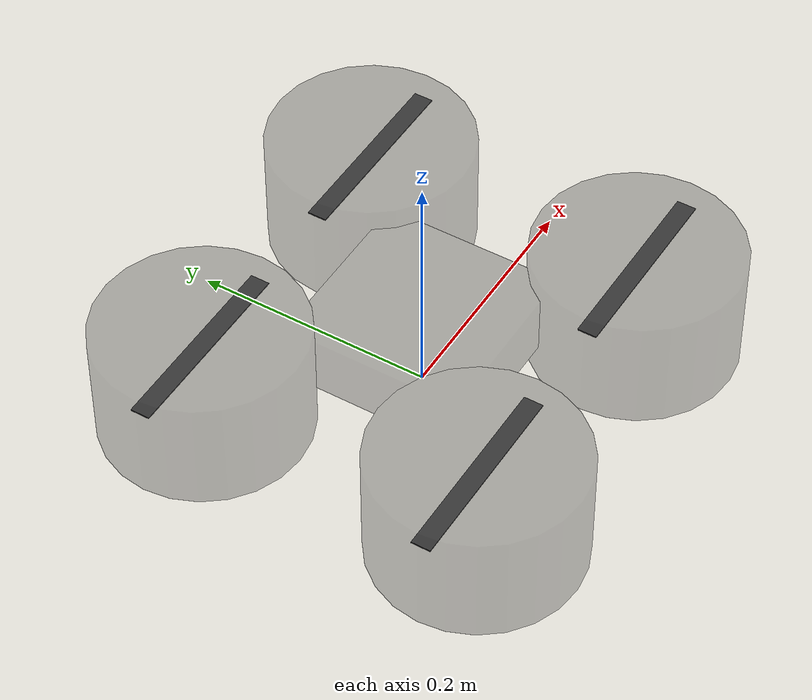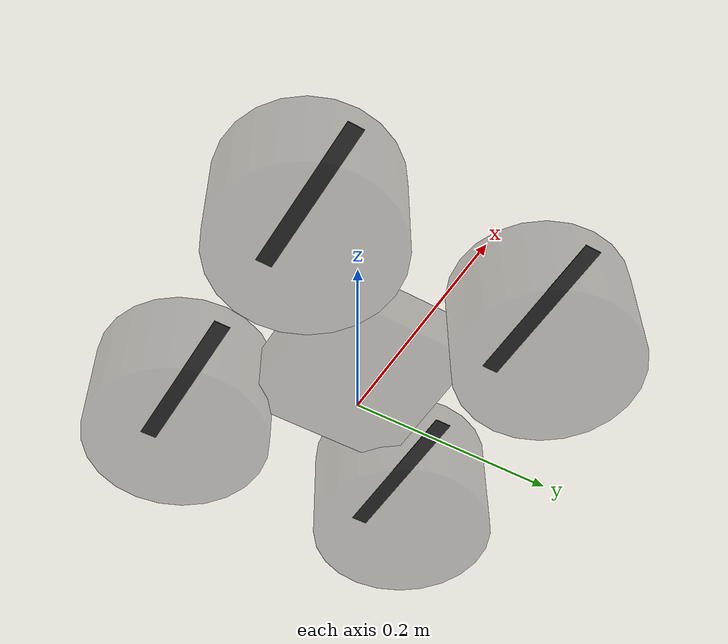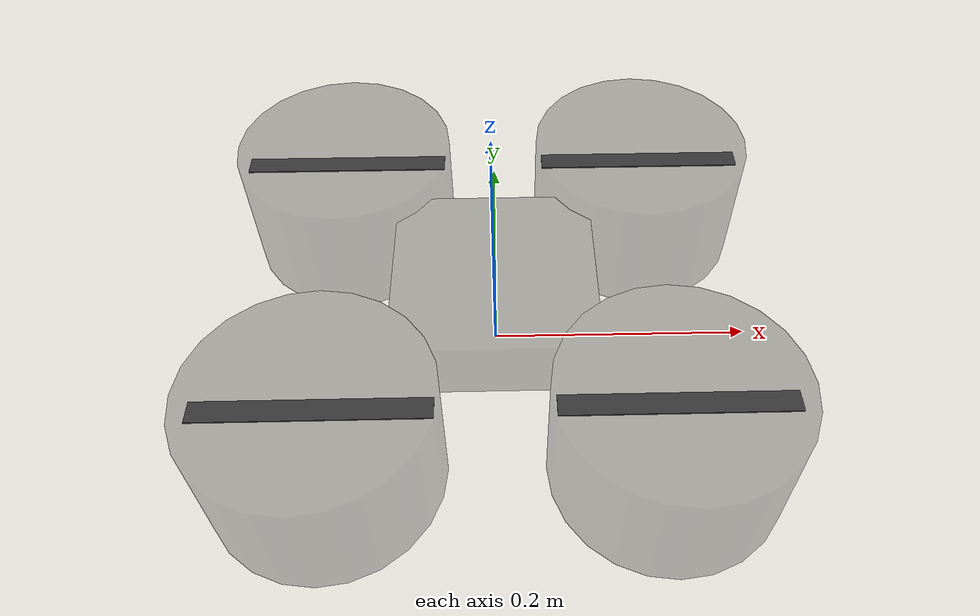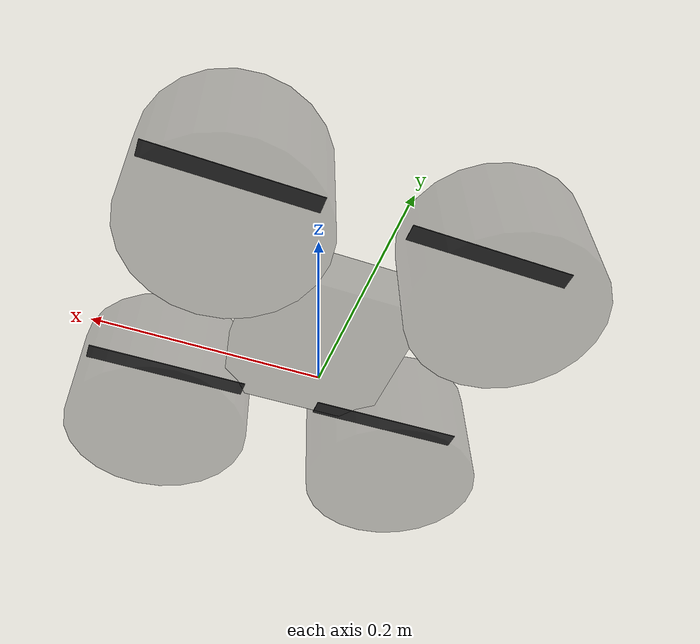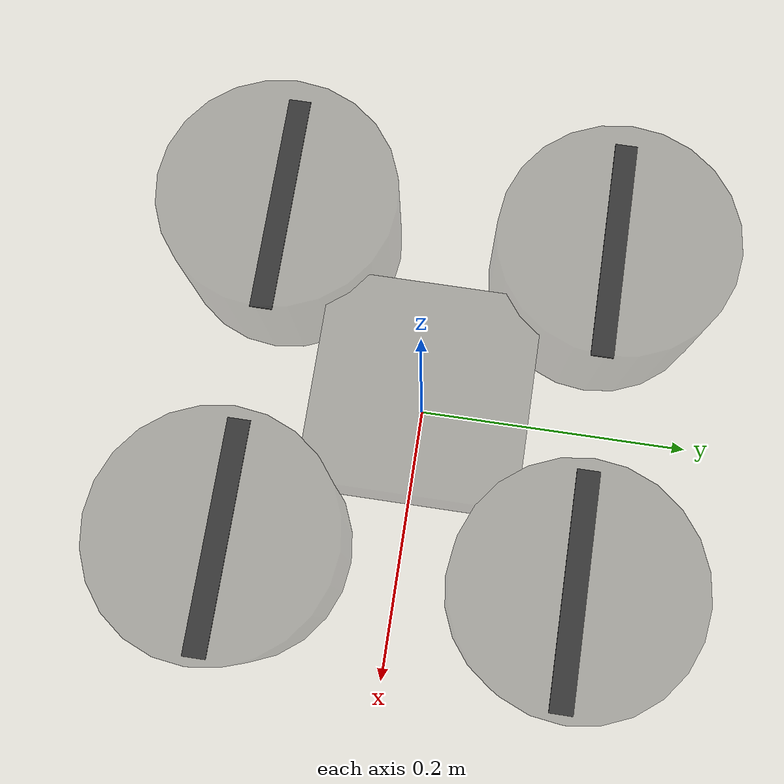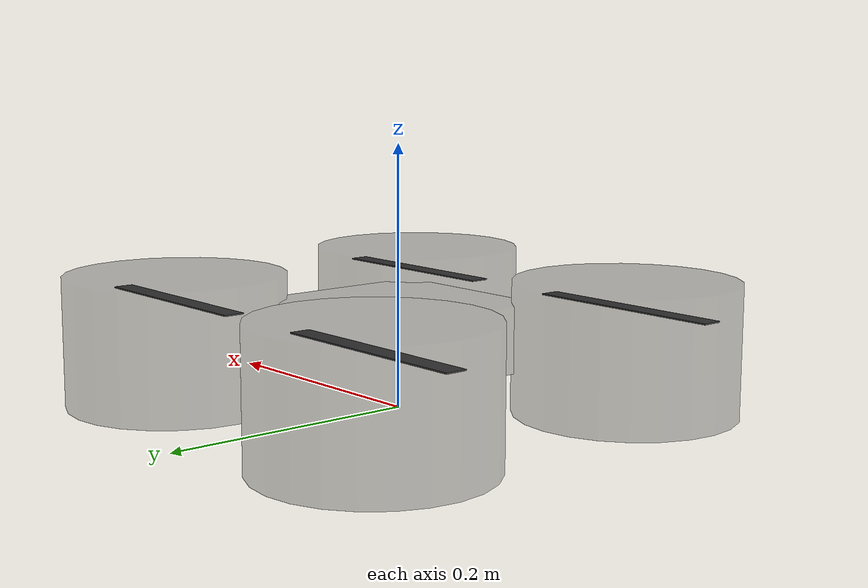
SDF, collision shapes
<?xml version="1.0" encoding="UTF-8"?>
<sdf version='1.9'>
  <model name='x500_custom'>
    <pose>0 0 0.05 0 0 0</pose>
    <self_collide>false</self_collide>
    <static>false</static>
    <link name="base_link">
      <inertial>
        <mass>2.0</mass>
        <inertia>
          <ixx>0.02166666666666667</ixx>
          <ixy>0</ixy>
          <ixz>0</ixz>
          <iyy>0.02166666666666667</iyy>
          <iyz>0</iyz>
          <izz>0.04000000000000001</izz>
        </inertia>
      </inertial>
      <gravity>true</gravity>
      <velocity_decay />

      <visual name="base_link_visual">
        <pose>0 0 .025 0 0 3.141592654</pose>
        <geometry>
          <mesh>
            <scale>0.69 0.69 0.69</scale>
            <uri>model://x500_base/meshes/NXP-HGD-CF.dae</uri>
          </mesh>
        </geometry>
      </visual>

      <visual name="5010_motor_base_0">
        <pose>0.12 0.12 .015 0 0 -.45</pose>
        <geometry>
          <mesh>
            <scale>0.7 0.7 0.7</scale>
            <uri>model://x500_base/meshes/5010Base.dae</uri>
          </mesh>
        </geometry>
      </visual>
      <visual name="5010_motor_base_1">
        <pose>-0.12 0.12 .015 0 0 -.45</pose>
        <geometry>
          <mesh>
            <scale>0.7 0.7 0.7</scale>
            <uri>model://x500_base/meshes/5010Base.dae</uri>
          </mesh>
        </geometry>
      </visual>
      <visual name="5010_motor_base_2">
        <pose>0.12 -0.12 .015 0 0 -.45</pose>
        <geometry>
          <mesh>
            <scale>0.7 0.7 0.7</scale>
            <uri>model://x500_base/meshes/5010Base.dae</uri>
          </mesh>
        </geometry>
      </visual>
      <visual name="5010_motor_base_3">
        <pose>-0.12 -0.12 .015 0 0 -.45</pose>
        <geometry>
          <mesh>
            <scale>0.7 0.7 0.7</scale>
            <uri>model://x500_base/meshes/5010Base.dae</uri>
          </mesh>
        </geometry>
      </visual>

      <collision name="base_link_collision_0">
        <pose>0 0 .007 0 0 0</pose>
        <geometry>
          <box>
            <size>0.15 0.15 0.05</size>
          </box>
        </geometry>
        <surface>
          <contact><ode><min_depth>0.001</min_depth><max_vel>0</max_vel></ode></contact>
          <friction><ode /></friction>
        </surface>
      </collision>

      <visual name="guard_0_visual">
        <pose>0.12 -0.12 0 0 0 0</pose>
        <geometry><cylinder><radius>0.085</radius><length>0.1</length></cylinder></geometry>
        <material>
          <ambient>0.1 0.1 0.1 0.3</ambient>
          <diffuse>0.1 0.1 0.1 0.3</diffuse>
        </material>
      </visual>
      <collision name="guard_0_collision">
        <pose>0.12 -0.12 0 0 0 0</pose>
        <geometry><cylinder><radius>0.085</radius><length>0.1</length></cylinder></geometry>
      </collision>

      <visual name="guard_1_visual">
        <pose>-0.12 0.12 0 0 0 0</pose>
        <geometry><cylinder><radius>0.085</radius><length>0.1</length></cylinder></geometry>
        <material>
          <ambient>0.1 0.1 0.1 0.3</ambient>
          <diffuse>0.1 0.1 0.1 0.3</diffuse>
        </material>
      </visual>
      <collision name="guard_1_collision">
        <pose>-0.12 0.12 0 0 0 0</pose>
        <geometry><cylinder><radius>0.085</radius><length>0.1</length></cylinder></geometry>
      </collision>

      <visual name="guard_2_visual">
        <pose>0.12 0.12 0 0 0 0</pose>
        <geometry><cylinder><radius>0.085</radius><length>0.1</length></cylinder></geometry>
        <material>
          <ambient>0.1 0.1 0.1 0.3</ambient>
          <diffuse>0.1 0.1 0.1 0.3</diffuse>
        </material>
      </visual>
      <collision name="guard_2_collision">
        <pose>0.12 0.12 0 0 0 0</pose>
        <geometry><cylinder><radius>0.085</radius><length>0.1</length></cylinder></geometry>
      </collision>

      <visual name="guard_3_visual">
        <pose>-0.12 -0.12 0 0 0 0</pose>
        <geometry><cylinder><radius>0.085</radius><length>0.1</length></cylinder></geometry>
        <material>
          <ambient>0.1 0.1 0.1 0.3</ambient>
          <diffuse>0.1 0.1 0.1 0.3</diffuse>
        </material>
      </visual>
      <collision name="guard_3_collision">
        <pose>-0.12 -0.12 0 0 0 0</pose>
        <geometry><cylinder><radius>0.085</radius><length>0.1</length></cylinder></geometry>
      </collision>

      <sensor name="air_pressure_sensor" type="air_pressure">
        <gz_frame_id>base_link</gz_frame_id>
        <always_on>1</always_on>
        <update_rate>50</update_rate>
        <air_pressure>
          <pressure>
            <noise type="gaussian"><mean>0</mean><stddev>3</stddev></noise>
          </pressure>
        </air_pressure>
      </sensor>
      <sensor name="magnetometer_sensor" type="magnetometer">
        <gz_frame_id>base_link</gz_frame_id>
        <always_on>1</always_on>
        <update_rate>100</update_rate>
        <magnetometer>
          <x><noise type="gaussian"><stddev>0.0001</stddev></noise></x>
          <y><noise type="gaussian"><stddev>0.0001</stddev></noise></y>
          <z><noise type="gaussian"><stddev>0.0001</stddev></noise></z>
        </magnetometer>
      </sensor>
      <sensor name="imu_sensor" type="imu">
        <gz_frame_id>base_link</gz_frame_id>
        <always_on>1</always_on>
        <update_rate>250</update_rate>
        <imu>
          <angular_velocity>
            <x><noise type="gaussian"><mean>0.0</mean><stddev>0.0008726646</stddev></noise></x>
            <y><noise type="gaussian"><mean>0.0</mean><stddev>0.0008726646</stddev></noise></y>
            <z><noise type="gaussian"><mean>0.0</mean><stddev>0.0008726646</stddev></noise></z>
          </angular_velocity>
          <linear_acceleration>
            <x><noise type="gaussian"><mean>0.0</mean><stddev>0.00637</stddev></noise></x>
            <y><noise type="gaussian"><mean>0.0</mean><stddev>0.00637</stddev></noise></y>
            <z><noise type="gaussian"><mean>0.0</mean><stddev>0.00686</stddev></noise></z>
          </linear_acceleration>
        </imu>
      </sensor>
      <sensor name="navsat_sensor" type="navsat">
        <gz_frame_id>base_link</gz_frame_id>
        <always_on>1</always_on>
        <update_rate>30</update_rate>
      </sensor>
    </link>

    <link name="rotor_0">
      <gravity>true</gravity>
      <self_collide>false</self_collide>
      <velocity_decay />
      <pose>0.12 -0.12 0.03 0 0 0</pose>
      <inertial>
        <mass>0.016076923076923075</mass>
        <inertia>
          <ixx>3.8464910483993325e-07</ixx>
          <iyy>2.6115851691700804e-05</iyy>
          <izz>2.649858234714004e-05</izz>
        </inertia>
      </inertial>
      <visual name="rotor_0_visual">
        <pose>-0.01 -0.07 -0.016 0 0 0</pose>
        <geometry>
          <mesh>
            <scale>0.485 0.485 0.485</scale>
            <uri>model://x500_base/meshes/1345_prop_ccw.stl</uri>
          </mesh>
        </geometry>
        <material>
          <script><name>Gazebo/DarkGrey</name><uri>file://media/materials/scripts/gazebo.material</uri></script>
        </material>
      </visual>
      <visual name="rotor_0_visual_motor_bell">
        <pose>0 0 -.015 0 0 0</pose>
        <geometry>
          <mesh>
            <scale>0.7 0.7 0.7</scale>
            <uri>model://x500_base/meshes/5010Bell.dae</uri>
          </mesh>
        </geometry>
      </visual>
      <collision name="rotor_0_collision">
        <pose>0 0 0 0 0 0</pose>
        <geometry>
          <box>
            <size>0.16 0.016 0.001</size>
          </box>
        </geometry>
      </collision>
    </link>
    <joint name="rotor_0_joint" type="revolute">
      <parent>base_link</parent>
      <child>rotor_0</child>
      <axis><xyz>0 0 1</xyz><limit><lower>-1e+16</lower><upper>1e+16</upper></limit></axis>
    </joint>

    <link name="rotor_1">
      <gravity>true</gravity>
      <self_collide>false</self_collide>
      <velocity_decay />
      <pose>-0.12 0.12 0.03 0 0 0</pose>
      <inertial>
        <mass>0.016076923076923075</mass>
        <inertia>
          <ixx>3.8464910483993325e-07</ixx>
          <iyy>2.6115851691700804e-05</iyy>
          <izz>2.649858234714004e-05</izz>
        </inertia>
      </inertial>
      <visual name="rotor_1_visual">
        <pose>-0.01 -0.07 -0.016 0 0 0</pose>
        <geometry>
          <mesh>
            <scale>0.485 0.485 0.485</scale>
            <uri>model://x500_base/meshes/1345_prop_ccw.stl</uri>
          </mesh>
        </geometry>
        <material>
          <script><name>Gazebo/DarkGrey</name><uri>file://media/materials/scripts/gazebo.material</uri></script>
        </material>
      </visual>
      <visual name="rotor_1_visual_motor_top">
        <pose>0 0 -.015 0 0 0</pose>
        <geometry>
          <mesh>
            <scale>0.7 0.7 0.7</scale>
            <uri>model://x500_base/meshes/5010Bell.dae</uri>
          </mesh>
        </geometry>
      </visual>
      <collision name="rotor_1_collision">
        <pose>0 0 0 0 0 0</pose>
        <geometry>
          <box>
            <size>0.16 0.016 0.001</size>
          </box>
        </geometry>
      </collision>
    </link>
    <joint name="rotor_1_joint" type="revolute">
      <parent>base_link</parent>
      <child>rotor_1</child>
      <axis><xyz>0 0 1</xyz><limit><lower>-1e+16</lower><upper>1e+16</upper></limit></axis>
    </joint>

    <link name="rotor_2">
      <gravity>true</gravity>
      <self_collide>false</self_collide>
      <velocity_decay />
      <pose>0.12 0.12 0.03 0 0 0</pose>
      <inertial>
        <mass>0.016076923076923075</mass>
        <inertia>
          <ixx>3.8464910483993325e-07</ixx>
          <iyy>2.6115851691700804e-05</iyy>
          <izz>2.649858234714004e-05</izz>
        </inertia>
      </inertial>
      <visual name="rotor_2_visual">
        <pose>-0.01 -0.07 -0.016 0 0 0</pose>
        <geometry>
          <mesh>
            <scale>0.485 0.485 0.485</scale>
            <uri>model://x500_base/meshes/1345_prop_cw.stl</uri>
          </mesh>
        </geometry>
        <material>
          <script><name>Gazebo/DarkGrey</name><uri>file://media/materials/scripts/gazebo.material</uri></script>
        </material>
      </visual>
      <visual name="rotor_2_visual_motor_top">
        <pose>0 0 -.015 0 0 0</pose>
        <geometry>
          <mesh>
            <scale>0.7 0.7 0.7</scale>
            <uri>model://x500_base/meshes/5010Bell.dae</uri>
          </mesh>
        </geometry>
      </visual>
      <collision name="rotor_2_collision">
        <pose>0 0 0 0 0 0</pose>
        <geometry>
          <box>
            <size>0.16 0.016 0.001</size>
          </box>
        </geometry>
      </collision>
    </link>
    <joint name="rotor_2_joint" type="revolute">
      <parent>base_link</parent>
      <child>rotor_2</child>
      <axis><xyz>0 0 1</xyz><limit><lower>-1e+16</lower><upper>1e+16</upper></limit></axis>
    </joint>

    <link name="rotor_3">
      <gravity>true</gravity>
      <self_collide>false</self_collide>
      <velocity_decay />
      <pose>-0.12 -0.12 0.03 0 0 0</pose>
      <inertial>
        <mass>0.016076923076923075</mass>
        <inertia>
          <ixx>3.8464910483993325e-07</ixx>
          <iyy>2.6115851691700804e-05</iyy>
          <izz>2.649858234714004e-05</izz>
        </inertia>
      </inertial>
      <visual name="rotor_3_visual">
        <pose>-0.01 -0.07 -0.016 0 0 0</pose>
        <geometry>
          <mesh>
            <scale>0.485 0.485 0.485</scale>
            <uri>model://x500_base/meshes/1345_prop_cw.stl</uri>
          </mesh>
        </geometry>
        <material>
          <script><name>Gazebo/DarkGrey</name><uri>file://media/materials/scripts/gazebo.material</uri></script>
        </material>
      </visual>
      <visual name="rotor_3_visual_motor_top">
        <pose>0 0 -.015 0 0 0</pose>
        <geometry>
          <mesh>
            <scale>0.7 0.7 0.7</scale>
            <uri>model://x500_base/meshes/5010Bell.dae</uri>
          </mesh>
        </geometry>
      </visual>
      <collision name="rotor_3_collision">
        <pose>0 0 0 0 0 0</pose>
        <geometry>
          <box>
            <size>0.16 0.016 0.001</size>
          </box>
        </geometry>
      </collision>
    </link>
    <joint name="rotor_3_joint" type="revolute">
      <parent>base_link</parent>
      <child>rotor_3</child>
      <axis><xyz>0 0 1</xyz><limit><lower>-1e+16</lower><upper>1e+16</upper></limit></axis>
    </joint>

    <plugin filename="gz-sim-multicopter-motor-model-system" name="gz::sim::systems::MulticopterMotorModel">
      <jointName>rotor_0_joint</jointName>
      <linkName>rotor_0</linkName>
      <turningDirection>ccw</turningDirection>
      <timeConstantUp>0.0125</timeConstantUp>
      <timeConstantDown>0.025</timeConstantDown>
      <maxRotVelocity>1000.0</maxRotVelocity>
      <motorConstant>8.54858e-06</motorConstant>
      <momentConstant>0.016</momentConstant>
      <commandSubTopic>command/motor_speed</commandSubTopic>
      <motorNumber>0</motorNumber>
      <rotorDragCoefficient>8.06428e-05</rotorDragCoefficient>
      <rollingMomentCoefficient>1e-06</rollingMomentCoefficient>
      <rotorVelocitySlowdownSim>10</rotorVelocitySlowdownSim>
      <motorType>velocity</motorType>
    </plugin>
    <plugin filename="gz-sim-multicopter-motor-model-system" name="gz::sim::systems::MulticopterMotorModel">
      <jointName>rotor_1_joint</jointName>
      <linkName>rotor_1</linkName>
      <turningDirection>ccw</turningDirection>
      <timeConstantUp>0.0125</timeConstantUp>
      <timeConstantDown>0.025</timeConstantDown>
      <maxRotVelocity>1000.0</maxRotVelocity>
      <motorConstant>8.54858e-06</motorConstant>
      <momentConstant>0.016</momentConstant>
      <commandSubTopic>command/motor_speed</commandSubTopic>
      <motorNumber>1</motorNumber>
      <rotorDragCoefficient>8.06428e-05</rotorDragCoefficient>
      <rollingMomentCoefficient>1e-06</rollingMomentCoefficient>
      <rotorVelocitySlowdownSim>10</rotorVelocitySlowdownSim>
      <motorType>velocity</motorType>
    </plugin>
    <plugin filename="gz-sim-multicopter-motor-model-system" name="gz::sim::systems::MulticopterMotorModel">
      <jointName>rotor_2_joint</jointName>
      <linkName>rotor_2</linkName>
      <turningDirection>cw</turningDirection>
      <timeConstantUp>0.0125</timeConstantUp>
      <timeConstantDown>0.025</timeConstantDown>
      <maxRotVelocity>1000.0</maxRotVelocity>
      <motorConstant>8.54858e-06</motorConstant>
      <momentConstant>0.016</momentConstant>
      <commandSubTopic>command/motor_speed</commandSubTopic>
      <motorNumber>2</motorNumber>
      <rotorDragCoefficient>8.06428e-05</rotorDragCoefficient>
      <rollingMomentCoefficient>1e-06</rollingMomentCoefficient>
      <rotorVelocitySlowdownSim>10</rotorVelocitySlowdownSim>
      <motorType>velocity</motorType>
    </plugin>
    <plugin filename="gz-sim-multicopter-motor-model-system" name="gz::sim::systems::MulticopterMotorModel">
      <jointName>rotor_3_joint</jointName>
      <linkName>rotor_3</linkName>
      <turningDirection>cw</turningDirection>
      <timeConstantUp>0.0125</timeConstantUp>
      <timeConstantDown>0.025</timeConstantDown>
      <maxRotVelocity>1000.0</maxRotVelocity>
      <motorConstant>8.54858e-06</motorConstant>
      <momentConstant>0.016</momentConstant>
      <commandSubTopic>command/motor_speed</commandSubTopic>
      <motorNumber>3</motorNumber>
      <rotorDragCoefficient>8.06428e-05</rotorDragCoefficient>
      <rollingMomentCoefficient>1e-06</rollingMomentCoefficient>
      <rotorVelocitySlowdownSim>10</rotorVelocitySlowdownSim>
      <motorType>velocity</motorType>
    </plugin>
    <plugin filename="MotorFailurePlugin" name="gz::sim::systems::MotorFailureSystem"></plugin>
  </model>
</sdf>
